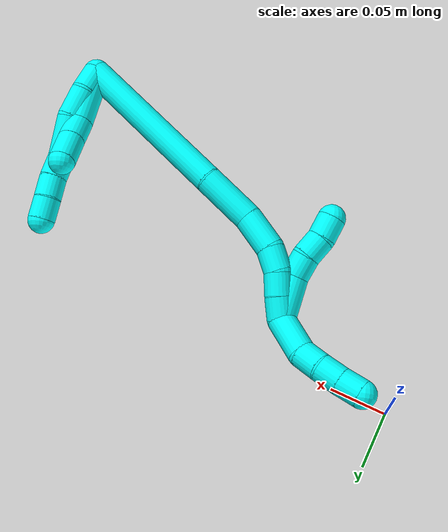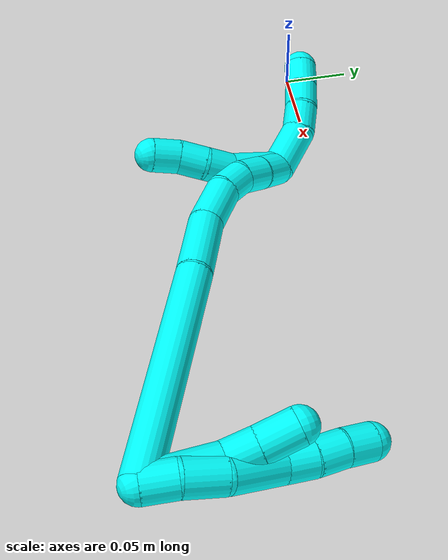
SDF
<sdf version="1.7">
 <world name="default">
  <model name="3">
   <static>0</static>
   <link name="3">
    <collision name="collision-cylinder-e_1_2_8">
     <pose>0.002147 0.003756 -0.010749 -2.80545 0.186398 -1.00704</pose>
     <geometry><cylinder><radius>0.0125</radius><length>0.023175</length></cylinder></geometry>
     <surface>
      <friction><ode><mu>1.16</mu><mu2>1.16</mu2><slip1>0</slip1><slip2>0</slip2></ode></friction>
      <contact><ode><kp>1e+06</kp><kd>1</kd><max_vel>0</max_vel><min_depth>0.001</min_depth></ode></contact>
     </surface>
    </collision>
    <visual name="visual-cylinder-e_1_2_8">
     <pose>0.002147 0.003756 -0.010749 -2.80545 0.186398 -1.00704</pose>
     <geometry><cylinder><radius>0.0125</radius><length>0.023175</length></cylinder></geometry>
     <material><ambient>0.003922 1 0.996078 1</ambient></material>
    </visual>
    <collision name="collision-cylinder-e_2_8_9">
     <pose>0.008215 0.00917 -0.034516 -3.0149 0.290323 -2.32284</pose>
     <geometry><cylinder><radius>0.0125</radius><length>0.027392</length></cylinder></geometry>
     <surface>
      <friction><ode><mu>1.16</mu><mu2>1.16</mu2><slip1>0</slip1><slip2>0</slip2></ode></friction>
      <contact><ode><kp>1e+06</kp><kd>1</kd><max_vel>0</max_vel><min_depth>0.001</min_depth></ode></contact>
     </surface>
    </collision>
    <visual name="visual-cylinder-e_2_8_9">
     <pose>0.008215 0.00917 -0.034516 -3.0149 0.290323 -2.32284</pose>
     <geometry><cylinder><radius>0.0125</radius><length>0.027392</length></cylinder></geometry>
     <material><ambient>0.003922 1 0.996078 1</ambient></material>
    </visual>
    <collision name="collision-cylinder-e_3_9_10">
     <pose>0.01556 0.008536 -0.066186 3.01934 0.180249 1.951</pose>
     <geometry><cylinder><radius>0.0125</radius><length>0.038203</length></cylinder></geometry>
     <surface>
      <friction><ode><mu>1.16</mu><mu2>1.16</mu2><slip1>0</slip1><slip2>0</slip2></ode></friction>
      <contact><ode><kp>1e+06</kp><kd>1</kd><max_vel>0</max_vel><min_depth>0.001</min_depth></ode></contact>
     </surface>
    </collision>
    <visual name="visual-cylinder-e_3_9_10">
     <pose>0.01556 0.008536 -0.066186 3.01934 0.180249 1.951</pose>
     <geometry><cylinder><radius>0.0125</radius><length>0.038203</length></cylinder></geometry>
     <material><ambient>0.003922 1 0.996078 1</ambient></material>
    </visual>
    <collision name="collision-cylinder-e_4_10_11">
     <pose>0.020654 0.007652 -0.094924 -3.00297 0.162483 -1.72956</pose>
     <geometry><cylinder><radius>0.0125</radius><length>0.020639</length></cylinder></geometry>
     <surface>
      <friction><ode><mu>1.16</mu><mu2>1.16</mu2><slip1>0</slip1><slip2>0</slip2></ode></friction>
      <contact><ode><kp>1e+06</kp><kd>1</kd><max_vel>0</max_vel><min_depth>0.001</min_depth></ode></contact>
     </surface>
    </collision>
    <visual name="visual-cylinder-e_4_10_11">
     <pose>0.020654 0.007652 -0.094924 -3.00297 0.162483 -1.72956</pose>
     <geometry><cylinder><radius>0.0125</radius><length>0.020639</length></cylinder></geometry>
     <material><ambient>0.003922 1 0.996078 1</ambient></material>
    </visual>
    <collision name="collision-cylinder-e_5_11_12">
     <pose>0.022953 0.009693 -0.115167 -3.07921 0.061729 -1.56022</pose>
     <geometry><cylinder><radius>0.0125</radius><length>0.020394</length></cylinder></geometry>
     <surface>
      <friction><ode><mu>1.16</mu><mu2>1.16</mu2><slip1>0</slip1><slip2>0</slip2></ode></friction>
      <contact><ode><kp>1e+06</kp><kd>1</kd><max_vel>0</max_vel><min_depth>0.001</min_depth></ode></contact>
     </surface>
    </collision>
    <visual name="visual-cylinder-e_5_11_12">
     <pose>0.022953 0.009693 -0.115167 -3.07921 0.061729 -1.56022</pose>
     <geometry><cylinder><radius>0.0125</radius><length>0.020394</length></cylinder></geometry>
     <material><ambient>0.003922 1 0.996078 1</ambient></material>
    </visual>
    <collision name="collision-cylinder-e_6_12_6">
     <pose>0.025015 0.010296 -0.135321 3.13842 0.142376 3.09718</pose>
     <geometry><cylinder><radius>0.0125</radius><length>0.020197</length></cylinder></geometry>
     <surface>
      <friction><ode><mu>1.16</mu><mu2>1.16</mu2><slip1>0</slip1><slip2>0</slip2></ode></friction>
      <contact><ode><kp>1e+06</kp><kd>1</kd><max_vel>0</max_vel><min_depth>0.001</min_depth></ode></contact>
     </surface>
    </collision>
    <visual name="visual-cylinder-e_6_12_6">
     <pose>0.025015 0.010296 -0.135321 3.13842 0.142376 3.09718</pose>
     <geometry><cylinder><radius>0.0125</radius><length>0.020197</length></cylinder></geometry>
     <material><ambient>0.003922 1 0.996078 1</ambient></material>
    </visual>
    <collision name="collision-cylinder-e_1_2_13">
     <pose>0.002592 0.002995 -0.025529 -3.0248 0.100503 -1.42082</pose>
     <geometry><cylinder><radius>0.0125</radius><length>0.05167</length></cylinder></geometry>
     <surface>
      <friction><ode><mu>1.16</mu><mu2>1.16</mu2><slip1>0</slip1><slip2>0</slip2></ode></friction>
      <contact><ode><kp>1e+06</kp><kd>1</kd><max_vel>0</max_vel><min_depth>0.001</min_depth></ode></contact>
     </surface>
    </collision>
    <visual name="visual-cylinder-e_1_2_13">
     <pose>0.002592 0.002995 -0.025529 -3.0248 0.100503 -1.42082</pose>
     <geometry><cylinder><radius>0.0125</radius><length>0.05167</length></cylinder></geometry>
     <material><ambient>0.003922 1 0.996078 1</ambient></material>
    </visual>
    <collision name="collision-cylinder-e_2_13_14">
     <pose>0.00433 0.010303 -0.061237 -2.74083 -0.077164 0.375621</pose>
     <geometry><cylinder><radius>0.0125</radius><length>0.022174</length></cylinder></geometry>
     <surface>
      <friction><ode><mu>1.16</mu><mu2>1.16</mu2><slip1>0</slip1><slip2>0</slip2></ode></friction>
      <contact><ode><kp>1e+06</kp><kd>1</kd><max_vel>0</max_vel><min_depth>0.001</min_depth></ode></contact>
     </surface>
    </collision>
    <visual name="visual-cylinder-e_2_13_14">
     <pose>0.00433 0.010303 -0.061237 -2.74083 -0.077164 0.375621</pose>
     <geometry><cylinder><radius>0.0125</radius><length>0.022174</length></cylinder></geometry>
     <material><ambient>0.003922 1 0.996078 1</ambient></material>
    </visual>
    <collision name="collision-cylinder-e_3_14_5">
     <pose>0.002008 0.019761 -0.083349 -2.7345 -0.112404 0.53223</pose>
     <geometry><cylinder><radius>0.0125</radius><length>0.026156</length></cylinder></geometry>
     <surface>
      <friction><ode><mu>1.16</mu><mu2>1.16</mu2><slip1>0</slip1><slip2>0</slip2></ode></friction>
      <contact><ode><kp>1e+06</kp><kd>1</kd><max_vel>0</max_vel><min_depth>0.001</min_depth></ode></contact>
     </surface>
    </collision>
    <visual name="visual-cylinder-e_3_14_5">
     <pose>0.002008 0.019761 -0.083349 -2.7345 -0.112404 0.53223</pose>
     <geometry><cylinder><radius>0.0125</radius><length>0.026156</length></cylinder></geometry>
     <material><ambient>0.003922 1 0.996078 1</ambient></material>
    </visual>
    <collision name="collision-cylinder-e_1_2_15">
     <pose>-0.055385 -0.0227 -0.047302 2.69416 -0.812451 -2.16853</pose>
     <geometry><cylinder><radius>0.0125</radius><length>0.152582</length></cylinder></geometry>
     <surface>
      <friction><ode><mu>1.16</mu><mu2>1.16</mu2><slip1>0</slip1><slip2>0</slip2></ode></friction>
      <contact><ode><kp>1e+06</kp><kd>1</kd><max_vel>0</max_vel><min_depth>0.001</min_depth></ode></contact>
     </surface>
    </collision>
    <visual name="visual-cylinder-e_1_2_15">
     <pose>-0.055385 -0.0227 -0.047302 2.69416 -0.812451 -2.16853</pose>
     <geometry><cylinder><radius>0.0125</radius><length>0.152582</length></cylinder></geometry>
     <material><ambient>0.003922 1 0.996078 1</ambient></material>
    </visual>
    <collision name="collision-cylinder-e_2_15_16">
     <pose>-0.127583 -0.055956 -0.10964 2.5295 -0.741093 -1.77595</pose>
     <geometry><cylinder><radius>0.0125</radius><length>0.049807</length></cylinder></geometry>
     <surface>
      <friction><ode><mu>1.16</mu><mu2>1.16</mu2><slip1>0</slip1><slip2>0</slip2></ode></friction>
      <contact><ode><kp>1e+06</kp><kd>1</kd><max_vel>0</max_vel><min_depth>0.001</min_depth></ode></contact>
     </surface>
    </collision>
    <visual name="visual-cylinder-e_2_15_16">
     <pose>-0.127583 -0.055956 -0.10964 2.5295 -0.741093 -1.77595</pose>
     <geometry><cylinder><radius>0.0125</radius><length>0.049807</length></cylinder></geometry>
     <material><ambient>0.003922 1 0.996078 1</ambient></material>
    </visual>
    <collision name="collision-cylinder-e_3_16_17">
     <pose>-0.154924 -0.071112 -0.137572 2.79896 -0.655586 -2.20033</pose>
     <geometry><cylinder><radius>0.0125</radius><length>0.034543</length></cylinder></geometry>
     <surface>
      <friction><ode><mu>1.16</mu><mu2>1.16</mu2><slip1>0</slip1><slip2>0</slip2></ode></friction>
      <contact><ode><kp>1e+06</kp><kd>1</kd><max_vel>0</max_vel><min_depth>0.001</min_depth></ode></contact>
     </surface>
    </collision>
    <visual name="visual-cylinder-e_3_16_17">
     <pose>-0.154924 -0.071112 -0.137572 2.79896 -0.655586 -2.20033</pose>
     <geometry><cylinder><radius>0.0125</radius><length>0.034543</length></cylinder></geometry>
     <material><ambient>0.003922 1 0.996078 1</ambient></material>
    </visual>
    <collision name="collision-cylinder-e_4_17_18">
     <pose>-0.169217 -0.078402 -0.160333 2.87539 -0.352706 -1.85287</pose>
     <geometry><cylinder><radius>0.0125</radius><length>0.021793</length></cylinder></geometry>
     <surface>
      <friction><ode><mu>1.16</mu><mu2>1.16</mu2><slip1>0</slip1><slip2>0</slip2></ode></friction>
      <contact><ode><kp>1e+06</kp><kd>1</kd><max_vel>0</max_vel><min_depth>0.001</min_depth></ode></contact>
     </surface>
    </collision>
    <visual name="visual-cylinder-e_4_17_18">
     <pose>-0.169217 -0.078402 -0.160333 2.87539 -0.352706 -1.85287</pose>
     <geometry><cylinder><radius>0.0125</radius><length>0.021793</length></cylinder></geometry>
     <material><ambient>0.003922 1 0.996078 1</ambient></material>
    </visual>
    <collision name="collision-cylinder-e_5_18_19">
     <pose>-0.173347 -0.083661 -0.180201 2.89022 -0.035386 -0.278276</pose>
     <geometry><cylinder><radius>0.0125</radius><length>0.020666</length></cylinder></geometry>
     <surface>
      <friction><ode><mu>1.16</mu><mu2>1.16</mu2><slip1>0</slip1><slip2>0</slip2></ode></friction>
      <contact><ode><kp>1e+06</kp><kd>1</kd><max_vel>0</max_vel><min_depth>0.001</min_depth></ode></contact>
     </surface>
    </collision>
    <visual name="visual-cylinder-e_5_18_19">
     <pose>-0.173347 -0.083661 -0.180201 2.89022 -0.035386 -0.278276</pose>
     <geometry><cylinder><radius>0.0125</radius><length>0.020666</length></cylinder></geometry>
     <material><ambient>0.003922 1 0.996078 1</ambient></material>
    </visual>
    <collision name="collision-cylinder-e_6_19_1">
     <pose>-0.174552 -0.089419 -0.199965 2.82573 -0.081538 -0.501493</pose>
     <geometry><cylinder><radius>0.0125</radius><length>0.020609</length></cylinder></geometry>
     <surface>
      <friction><ode><mu>1.16</mu><mu2>1.16</mu2><slip1>0</slip1><slip2>0</slip2></ode></friction>
      <contact><ode><kp>1e+06</kp><kd>1</kd><max_vel>0</max_vel><min_depth>0.001</min_depth></ode></contact>
     </surface>
    </collision>
    <visual name="visual-cylinder-e_6_19_1">
     <pose>-0.174552 -0.089419 -0.199965 2.82573 -0.081538 -0.501493</pose>
     <geometry><cylinder><radius>0.0125</radius><length>0.020609</length></cylinder></geometry>
     <material><ambient>0.003922 1 0.996078 1</ambient></material>
    </visual>
    <collision name="collision-cylinder-e_1_1_20">
     <pose>-0.187375 -0.092568 -0.223941 -3.13862 -0.700492 3.13346</pose>
     <geometry><cylinder><radius>0.0125</radius><length>0.037184</length></cylinder></geometry>
     <surface>
      <friction><ode><mu>1.16</mu><mu2>1.16</mu2><slip1>0</slip1><slip2>0</slip2></ode></friction>
      <contact><ode><kp>1e+06</kp><kd>1</kd><max_vel>0</max_vel><min_depth>0.001</min_depth></ode></contact>
     </surface>
    </collision>
    <visual name="visual-cylinder-e_1_1_20">
     <pose>-0.187375 -0.092568 -0.223941 -3.13862 -0.700492 3.13346</pose>
     <geometry><cylinder><radius>0.0125</radius><length>0.037184</length></cylinder></geometry>
     <material><ambient>0.003922 1 0.996078 1</ambient></material>
    </visual>
    <collision name="collision-cylinder-e_2_20_21">
     <pose>-0.208506 -0.093243 -0.243508 3.00834 -1.03738 -2.90886</pose>
     <geometry><cylinder><radius>0.0125</radius><length>0.021243</length></cylinder></geometry>
     <surface>
      <friction><ode><mu>1.16</mu><mu2>1.16</mu2><slip1>0</slip1><slip2>0</slip2></ode></friction>
      <contact><ode><kp>1e+06</kp><kd>1</kd><max_vel>0</max_vel><min_depth>0.001</min_depth></ode></contact>
     </surface>
    </collision>
    <visual name="visual-cylinder-e_2_20_21">
     <pose>-0.208506 -0.093243 -0.243508 3.00834 -1.03738 -2.90886</pose>
     <geometry><cylinder><radius>0.0125</radius><length>0.021243</length></cylinder></geometry>
     <material><ambient>0.003922 1 0.996078 1</ambient></material>
    </visual>
    <collision name="collision-cylinder-e_3_21_22">
     <pose>-0.226478 -0.09645 -0.253814 2.67575 -1.00999 -2.33085</pose>
     <geometry><cylinder><radius>0.0125</radius><length>0.020845</length></cylinder></geometry>
     <surface>
      <friction><ode><mu>1.16</mu><mu2>1.16</mu2><slip1>0</slip1><slip2>0</slip2></ode></friction>
      <contact><ode><kp>1e+06</kp><kd>1</kd><max_vel>0</max_vel><min_depth>0.001</min_depth></ode></contact>
     </surface>
    </collision>
    <visual name="visual-cylinder-e_3_21_22">
     <pose>-0.226478 -0.09645 -0.253814 2.67575 -1.00999 -2.33085</pose>
     <geometry><cylinder><radius>0.0125</radius><length>0.020845</length></cylinder></geometry>
     <material><ambient>0.003922 1 0.996078 1</ambient></material>
    </visual>
    <collision name="collision-cylinder-e_4_22_4">
     <pose>-0.244426 -0.101137 -0.263167 2.67867 -1.07635 -2.38954</pose>
     <geometry><cylinder><radius>0.0125</radius><length>0.020727</length></cylinder></geometry>
     <surface>
      <friction><ode><mu>1.16</mu><mu2>1.16</mu2><slip1>0</slip1><slip2>0</slip2></ode></friction>
      <contact><ode><kp>1e+06</kp><kd>1</kd><max_vel>0</max_vel><min_depth>0.001</min_depth></ode></contact>
     </surface>
    </collision>
    <visual name="visual-cylinder-e_4_22_4">
     <pose>-0.244426 -0.101137 -0.263167 2.67867 -1.07635 -2.38954</pose>
     <geometry><cylinder><radius>0.0125</radius><length>0.020727</length></cylinder></geometry>
     <material><ambient>0.003922 1 0.996078 1</ambient></material>
    </visual>
    <collision name="collision-cylinder-e_1_1_23">
     <pose>-0.179061 -0.092954 -0.190414 0.017811 -0.187755 -0.001677</pose>
     <geometry><cylinder><radius>0.0125</radius><length>0.039324</length></cylinder></geometry>
     <surface>
      <friction><ode><mu>1.16</mu><mu2>1.16</mu2><slip1>0</slip1><slip2>0</slip2></ode></friction>
      <contact><ode><kp>1e+06</kp><kd>1</kd><max_vel>0</max_vel><min_depth>0.001</min_depth></ode></contact>
     </surface>
    </collision>
    <visual name="visual-cylinder-e_1_1_23">
     <pose>-0.179061 -0.092954 -0.190414 0.017811 -0.187755 -0.001677</pose>
     <geometry><cylinder><radius>0.0125</radius><length>0.039324</length></cylinder></geometry>
     <material><ambient>0.003922 1 0.996078 1</ambient></material>
    </visual>
    <collision name="collision-cylinder-e_2_23_24">
     <pose>-0.187295 -0.093161 -0.161953 -0.014995 -0.462727 0.003533</pose>
     <geometry><cylinder><radius>0.0125</radius><length>0.020446</length></cylinder></geometry>
     <surface>
      <friction><ode><mu>1.16</mu><mu2>1.16</mu2><slip1>0</slip1><slip2>0</slip2></ode></friction>
      <contact><ode><kp>1e+06</kp><kd>1</kd><max_vel>0</max_vel><min_depth>0.001</min_depth></ode></contact>
     </surface>
    </collision>
    <visual name="visual-cylinder-e_2_23_24">
     <pose>-0.187295 -0.093161 -0.161953 -0.014995 -0.462727 0.003533</pose>
     <geometry><cylinder><radius>0.0125</radius><length>0.020446</length></cylinder></geometry>
     <material><ambient>0.003922 1 0.996078 1</ambient></material>
    </visual>
    <collision name="collision-cylinder-e_3_24_25">
     <pose>-0.197107 -0.094965 -0.144498 0.229566 -0.551491 -0.06522</pose>
     <geometry><cylinder><radius>0.0125</radius><length>0.020035</length></cylinder></geometry>
     <surface>
      <friction><ode><mu>1.16</mu><mu2>1.16</mu2><slip1>0</slip1><slip2>0</slip2></ode></friction>
      <contact><ode><kp>1e+06</kp><kd>1</kd><max_vel>0</max_vel><min_depth>0.001</min_depth></ode></contact>
     </surface>
    </collision>
    <visual name="visual-cylinder-e_3_24_25">
     <pose>-0.197107 -0.094965 -0.144498 0.229566 -0.551491 -0.06522</pose>
     <geometry><cylinder><radius>0.0125</radius><length>0.020035</length></cylinder></geometry>
     <material><ambient>0.003922 1 0.996078 1</ambient></material>
    </visual>
    <collision name="collision-cylinder-e_4_25_3">
     <pose>-0.205634 -0.098265 -0.126736 0.142688 -0.330676 -0.023849</pose>
     <geometry><cylinder><radius>0.0125</radius><length>0.020194</length></cylinder></geometry>
     <surface>
      <friction><ode><mu>1.16</mu><mu2>1.16</mu2><slip1>0</slip1><slip2>0</slip2></ode></friction>
      <contact><ode><kp>1e+06</kp><kd>1</kd><max_vel>0</max_vel><min_depth>0.001</min_depth></ode></contact>
     </surface>
    </collision>
    <visual name="visual-cylinder-e_4_25_3">
     <pose>-0.205634 -0.098265 -0.126736 0.142688 -0.330676 -0.023849</pose>
     <geometry><cylinder><radius>0.0125</radius><length>0.020194</length></cylinder></geometry>
     <material><ambient>0.003922 1 0.996078 1</ambient></material>
    </visual>
    <collision name="collision-sphere-3">
     <pose>-0.208912 -0.099623 -0.117283 0 -0 0</pose>
     <geometry><sphere><radius>0.0125</radius></sphere></geometry>
     <surface>
      <friction><ode><mu>1.16</mu><mu2>1.16</mu2><slip1>0</slip1><slip2>0</slip2></ode></friction>
      <contact><ode><kp>1e+06</kp><kd>1</kd><max_vel>0</max_vel><min_depth>0.001</min_depth></ode></contact>
     </surface>
    </collision>
    <visual name="visual-sphere-3">
     <pose>-0.208912 -0.099623 -0.117283 0 -0 0</pose>
     <geometry><sphere><radius>0.0125</radius></sphere></geometry>
     <material><ambient>0.003922 1 0.996078 1</ambient></material>
    </visual>
    <collision name="collision-sphere-25">
     <pose>-0.202356 -0.096907 -0.136189 0 -0 0</pose>
     <geometry><sphere><radius>0.0125</radius></sphere></geometry>
     <surface>
      <friction><ode><mu>1.16</mu><mu2>1.16</mu2><slip1>0</slip1><slip2>0</slip2></ode></friction>
      <contact><ode><kp>1e+06</kp><kd>1</kd><max_vel>0</max_vel><min_depth>0.001</min_depth></ode></contact>
     </surface>
    </collision>
    <visual name="visual-sphere-25">
     <pose>-0.202356 -0.096907 -0.136189 0 -0 0</pose>
     <geometry><sphere><radius>0.0125</radius></sphere></geometry>
     <material><ambient>0.003922 1 0.996078 1</ambient></material>
    </visual>
    <collision name="collision-sphere-24">
     <pose>-0.191858 -0.093023 -0.152806 0 -0 0</pose>
     <geometry><sphere><radius>0.0125</radius></sphere></geometry>
     <surface>
      <friction><ode><mu>1.16</mu><mu2>1.16</mu2><slip1>0</slip1><slip2>0</slip2></ode></friction>
      <contact><ode><kp>1e+06</kp><kd>1</kd><max_vel>0</max_vel><min_depth>0.001</min_depth></ode></contact>
     </surface>
    </collision>
    <visual name="visual-sphere-24">
     <pose>-0.191858 -0.093023 -0.152806 0 -0 0</pose>
     <geometry><sphere><radius>0.0125</radius></sphere></geometry>
     <material><ambient>0.003922 1 0.996078 1</ambient></material>
    </visual>
    <collision name="collision-sphere-23">
     <pose>-0.182731 -0.093298 -0.1711 0 -0 0</pose>
     <geometry><sphere><radius>0.0125</radius></sphere></geometry>
     <surface>
      <friction><ode><mu>1.16</mu><mu2>1.16</mu2><slip1>0</slip1><slip2>0</slip2></ode></friction>
      <contact><ode><kp>1e+06</kp><kd>1</kd><max_vel>0</max_vel><min_depth>0.001</min_depth></ode></contact>
     </surface>
    </collision>
    <visual name="visual-sphere-23">
     <pose>-0.182731 -0.093298 -0.1711 0 -0 0</pose>
     <geometry><sphere><radius>0.0125</radius></sphere></geometry>
     <material><ambient>0.003922 1 0.996078 1</ambient></material>
    </visual>
    <collision name="collision-sphere-4">
     <pose>-0.253549 -0.103333 -0.267568 0 -0 0</pose>
     <geometry><sphere><radius>0.0125</radius></sphere></geometry>
     <surface>
      <friction><ode><mu>1.16</mu><mu2>1.16</mu2><slip1>0</slip1><slip2>0</slip2></ode></friction>
      <contact><ode><kp>1e+06</kp><kd>1</kd><max_vel>0</max_vel><min_depth>0.001</min_depth></ode></contact>
     </surface>
    </collision>
    <visual name="visual-sphere-4">
     <pose>-0.253549 -0.103333 -0.267568 0 -0 0</pose>
     <geometry><sphere><radius>0.0125</radius></sphere></geometry>
     <material><ambient>0.003922 1 0.996078 1</ambient></material>
    </visual>
    <collision name="collision-sphere-22">
     <pose>-0.235304 -0.09894 -0.258767 0 -0 0</pose>
     <geometry><sphere><radius>0.0125</radius></sphere></geometry>
     <surface>
      <friction><ode><mu>1.16</mu><mu2>1.16</mu2><slip1>0</slip1><slip2>0</slip2></ode></friction>
      <contact><ode><kp>1e+06</kp><kd>1</kd><max_vel>0</max_vel><min_depth>0.001</min_depth></ode></contact>
     </surface>
    </collision>
    <visual name="visual-sphere-22">
     <pose>-0.235304 -0.09894 -0.258767 0 -0 0</pose>
     <geometry><sphere><radius>0.0125</radius></sphere></geometry>
     <material><ambient>0.003922 1 0.996078 1</ambient></material>
    </visual>
    <collision name="collision-sphere-21">
     <pose>-0.217652 -0.09396 -0.248861 0 -0 0</pose>
     <geometry><sphere><radius>0.0125</radius></sphere></geometry>
     <surface>
      <friction><ode><mu>1.16</mu><mu2>1.16</mu2><slip1>0</slip1><slip2>0</slip2></ode></friction>
      <contact><ode><kp>1e+06</kp><kd>1</kd><max_vel>0</max_vel><min_depth>0.001</min_depth></ode></contact>
     </surface>
    </collision>
    <visual name="visual-sphere-21">
     <pose>-0.217652 -0.09396 -0.248861 0 -0 0</pose>
     <geometry><sphere><radius>0.0125</radius></sphere></geometry>
     <material><ambient>0.003922 1 0.996078 1</ambient></material>
    </visual>
    <collision name="collision-sphere-20">
     <pose>-0.19936 -0.092525 -0.238155 0 -0 0</pose>
     <geometry><sphere><radius>0.0125</radius></sphere></geometry>
     <surface>
      <friction><ode><mu>1.16</mu><mu2>1.16</mu2><slip1>0</slip1><slip2>0</slip2></ode></friction>
      <contact><ode><kp>1e+06</kp><kd>1</kd><max_vel>0</max_vel><min_depth>0.001</min_depth></ode></contact>
     </surface>
    </collision>
    <visual name="visual-sphere-20">
     <pose>-0.19936 -0.092525 -0.238155 0 -0 0</pose>
     <geometry><sphere><radius>0.0125</radius></sphere></geometry>
     <material><ambient>0.003922 1 0.996078 1</ambient></material>
    </visual>
    <collision name="collision-sphere-12">
     <pose>0.023582 0.010328 -0.125325 0 -0 0</pose>
     <geometry><sphere><radius>0.0125</radius></sphere></geometry>
     <surface>
      <friction><ode><mu>1.16</mu><mu2>1.16</mu2><slip1>0</slip1><slip2>0</slip2></ode></friction>
      <contact><ode><kp>1e+06</kp><kd>1</kd><max_vel>0</max_vel><min_depth>0.001</min_depth></ode></contact>
     </surface>
    </collision>
    <visual name="visual-sphere-12">
     <pose>0.023582 0.010328 -0.125325 0 -0 0</pose>
     <geometry><sphere><radius>0.0125</radius></sphere></geometry>
     <material><ambient>0.003922 1 0.996078 1</ambient></material>
    </visual>
    <collision name="collision-sphere-11">
     <pose>0.022324 0.009059 -0.10501 0 -0 0</pose>
     <geometry><sphere><radius>0.0125</radius></sphere></geometry>
     <surface>
      <friction><ode><mu>1.16</mu><mu2>1.16</mu2><slip1>0</slip1><slip2>0</slip2></ode></friction>
      <contact><ode><kp>1e+06</kp><kd>1</kd><max_vel>0</max_vel><min_depth>0.001</min_depth></ode></contact>
     </surface>
    </collision>
    <visual name="visual-sphere-11">
     <pose>0.022324 0.009059 -0.10501 0 -0 0</pose>
     <geometry><sphere><radius>0.0125</radius></sphere></geometry>
     <material><ambient>0.003922 1 0.996078 1</ambient></material>
    </visual>
    <collision name="collision-sphere-10">
     <pose>0.018985 0.006245 -0.084838 0 -0 0</pose>
     <geometry><sphere><radius>0.0125</radius></sphere></geometry>
     <surface>
      <friction><ode><mu>1.16</mu><mu2>1.16</mu2><slip1>0</slip1><slip2>0</slip2></ode></friction>
      <contact><ode><kp>1e+06</kp><kd>1</kd><max_vel>0</max_vel><min_depth>0.001</min_depth></ode></contact>
     </surface>
    </collision>
    <visual name="visual-sphere-10">
     <pose>0.018985 0.006245 -0.084838 0 -0 0</pose>
     <geometry><sphere><radius>0.0125</radius></sphere></geometry>
     <material><ambient>0.003922 1 0.996078 1</ambient></material>
    </visual>
    <collision name="collision-sphere-9">
     <pose>0.012136 0.010828 -0.047534 0 -0 0</pose>
     <geometry><sphere><radius>0.0125</radius></sphere></geometry>
     <surface>
      <friction><ode><mu>1.16</mu><mu2>1.16</mu2><slip1>0</slip1><slip2>0</slip2></ode></friction>
      <contact><ode><kp>1e+06</kp><kd>1</kd><max_vel>0</max_vel><min_depth>0.001</min_depth></ode></contact>
     </surface>
    </collision>
    <visual name="visual-sphere-9">
     <pose>0.012136 0.010828 -0.047534 0 -0 0</pose>
     <geometry><sphere><radius>0.0125</radius></sphere></geometry>
     <material><ambient>0.003922 1 0.996078 1</ambient></material>
    </visual>
    <collision name="collision-sphere-2">
     <geometry><sphere><radius>0.0125</radius></sphere></geometry>
     <surface>
      <friction><ode><mu>1.16</mu><mu2>1.16</mu2><slip1>0</slip1><slip2>0</slip2></ode></friction>
      <contact><ode><kp>1e+06</kp><kd>1</kd><max_vel>0</max_vel><min_depth>0.001</min_depth></ode></contact>
     </surface>
    </collision>
    <visual name="visual-sphere-2">
     <geometry><sphere><radius>0.0125</radius></sphere></geometry>
     <material><ambient>0.003922 1 0.996078 1</ambient></material>
    </visual>
    <collision name="collision-sphere-19">
     <pose>-0.173712 -0.086229 -0.190203 0 -0 0</pose>
     <geometry><sphere><radius>0.0125</radius></sphere></geometry>
     <surface>
      <friction><ode><mu>1.16</mu><mu2>1.16</mu2><slip1>0</slip1><slip2>0</slip2></ode></friction>
      <contact><ode><kp>1e+06</kp><kd>1</kd><max_vel>0</max_vel><min_depth>0.001</min_depth></ode></contact>
     </surface>
    </collision>
    <visual name="visual-sphere-19">
     <pose>-0.173712 -0.086229 -0.190203 0 -0 0</pose>
     <geometry><sphere><radius>0.0125</radius></sphere></geometry>
     <material><ambient>0.003922 1 0.996078 1</ambient></material>
    </visual>
    <collision name="collision-sphere-8">
     <pose>0.004295 0.007512 -0.021499 0 -0 0</pose>
     <geometry><sphere><radius>0.0125</radius></sphere></geometry>
     <surface>
      <friction><ode><mu>1.16</mu><mu2>1.16</mu2><slip1>0</slip1><slip2>0</slip2></ode></friction>
      <contact><ode><kp>1e+06</kp><kd>1</kd><max_vel>0</max_vel><min_depth>0.001</min_depth></ode></contact>
     </surface>
    </collision>
    <visual name="visual-sphere-8">
     <pose>0.004295 0.007512 -0.021499 0 -0 0</pose>
     <geometry><sphere><radius>0.0125</radius></sphere></geometry>
     <material><ambient>0.003922 1 0.996078 1</ambient></material>
    </visual>
    <collision name="collision-sphere-6">
     <pose>0.026448 0.010264 -0.145318 0 -0 0</pose>
     <geometry><sphere><radius>0.0125</radius></sphere></geometry>
     <surface>
      <friction><ode><mu>1.16</mu><mu2>1.16</mu2><slip1>0</slip1><slip2>0</slip2></ode></friction>
      <contact><ode><kp>1e+06</kp><kd>1</kd><max_vel>0</max_vel><min_depth>0.001</min_depth></ode></contact>
     </surface>
    </collision>
    <visual name="visual-sphere-6">
     <pose>0.026448 0.010264 -0.145318 0 -0 0</pose>
     <geometry><sphere><radius>0.0125</radius></sphere></geometry>
     <material><ambient>0.003922 1 0.996078 1</ambient></material>
    </visual>
    <collision name="collision-sphere-13">
     <pose>0.005184 0.005991 -0.051059 0 -0 0</pose>
     <geometry><sphere><radius>0.0125</radius></sphere></geometry>
     <surface>
      <friction><ode><mu>1.16</mu><mu2>1.16</mu2><slip1>0</slip1><slip2>0</slip2></ode></friction>
      <contact><ode><kp>1e+06</kp><kd>1</kd><max_vel>0</max_vel><min_depth>0.001</min_depth></ode></contact>
     </surface>
    </collision>
    <visual name="visual-sphere-13">
     <pose>0.005184 0.005991 -0.051059 0 -0 0</pose>
     <geometry><sphere><radius>0.0125</radius></sphere></geometry>
     <material><ambient>0.003922 1 0.996078 1</ambient></material>
    </visual>
    <collision name="collision-sphere-14">
     <pose>0.003475 0.014616 -0.071415 0 -0 0</pose>
     <geometry><sphere><radius>0.0125</radius></sphere></geometry>
     <surface>
      <friction><ode><mu>1.16</mu><mu2>1.16</mu2><slip1>0</slip1><slip2>0</slip2></ode></friction>
      <contact><ode><kp>1e+06</kp><kd>1</kd><max_vel>0</max_vel><min_depth>0.001</min_depth></ode></contact>
     </surface>
    </collision>
    <visual name="visual-sphere-14">
     <pose>0.003475 0.014616 -0.071415 0 -0 0</pose>
     <geometry><sphere><radius>0.0125</radius></sphere></geometry>
     <material><ambient>0.003922 1 0.996078 1</ambient></material>
    </visual>
    <collision name="collision-sphere-5">
     <pose>0.000541 0.024906 -0.095282 0 -0 0</pose>
     <geometry><sphere><radius>0.0125</radius></sphere></geometry>
     <surface>
      <friction><ode><mu>1.16</mu><mu2>1.16</mu2><slip1>0</slip1><slip2>0</slip2></ode></friction>
      <contact><ode><kp>1e+06</kp><kd>1</kd><max_vel>0</max_vel><min_depth>0.001</min_depth></ode></contact>
     </surface>
    </collision>
    <visual name="visual-sphere-5">
     <pose>0.000541 0.024906 -0.095282 0 -0 0</pose>
     <geometry><sphere><radius>0.0125</radius></sphere></geometry>
     <material><ambient>0.003922 1 0.996078 1</ambient></material>
    </visual>
    <collision name="collision-sphere-15">
     <pose>-0.11077 -0.0454 -0.094604 0 -0 0</pose>
     <geometry><sphere><radius>0.0125</radius></sphere></geometry>
     <surface>
      <friction><ode><mu>1.16</mu><mu2>1.16</mu2><slip1>0</slip1><slip2>0</slip2></ode></friction>
      <contact><ode><kp>1e+06</kp><kd>1</kd><max_vel>0</max_vel><min_depth>0.001</min_depth></ode></contact>
     </surface>
    </collision>
    <visual name="visual-sphere-15">
     <pose>-0.11077 -0.0454 -0.094604 0 -0 0</pose>
     <geometry><sphere><radius>0.0125</radius></sphere></geometry>
     <material><ambient>0.003922 1 0.996078 1</ambient></material>
    </visual>
    <collision name="collision-sphere-16">
     <pose>-0.144395 -0.066512 -0.124677 0 -0 0</pose>
     <geometry><sphere><radius>0.0125</radius></sphere></geometry>
     <surface>
      <friction><ode><mu>1.16</mu><mu2>1.16</mu2><slip1>0</slip1><slip2>0</slip2></ode></friction>
      <contact><ode><kp>1e+06</kp><kd>1</kd><max_vel>0</max_vel><min_depth>0.001</min_depth></ode></contact>
     </surface>
    </collision>
    <visual name="visual-sphere-16">
     <pose>-0.144395 -0.066512 -0.124677 0 -0 0</pose>
     <geometry><sphere><radius>0.0125</radius></sphere></geometry>
     <material><ambient>0.003922 1 0.996078 1</ambient></material>
    </visual>
    <collision name="collision-sphere-17">
     <pose>-0.165453 -0.075712 -0.150467 0 -0 0</pose>
     <geometry><sphere><radius>0.0125</radius></sphere></geometry>
     <surface>
      <friction><ode><mu>1.16</mu><mu2>1.16</mu2><slip1>0</slip1><slip2>0</slip2></ode></friction>
      <contact><ode><kp>1e+06</kp><kd>1</kd><max_vel>0</max_vel><min_depth>0.001</min_depth></ode></contact>
     </surface>
    </collision>
    <visual name="visual-sphere-17">
     <pose>-0.165453 -0.075712 -0.150467 0 -0 0</pose>
     <geometry><sphere><radius>0.0125</radius></sphere></geometry>
     <material><ambient>0.003922 1 0.996078 1</ambient></material>
    </visual>
    <collision name="collision-sphere-18">
     <pose>-0.172981 -0.081092 -0.170199 0 -0 0</pose>
     <geometry><sphere><radius>0.0125</radius></sphere></geometry>
     <surface>
      <friction><ode><mu>1.16</mu><mu2>1.16</mu2><slip1>0</slip1><slip2>0</slip2></ode></friction>
      <contact><ode><kp>1e+06</kp><kd>1</kd><max_vel>0</max_vel><min_depth>0.001</min_depth></ode></contact>
     </surface>
    </collision>
    <visual name="visual-sphere-18">
     <pose>-0.172981 -0.081092 -0.170199 0 -0 0</pose>
     <geometry><sphere><radius>0.0125</radius></sphere></geometry>
     <material><ambient>0.003922 1 0.996078 1</ambient></material>
    </visual>
    <collision name="collision-sphere-1">
     <pose>-0.175391 -0.09261 -0.209727 0 -0 0</pose>
     <geometry><sphere><radius>0.0125</radius></sphere></geometry>
     <surface>
      <friction><ode><mu>1.16</mu><mu2>1.16</mu2><slip1>0</slip1><slip2>0</slip2></ode></friction>
      <contact><ode><kp>1e+06</kp><kd>1</kd><max_vel>0</max_vel><min_depth>0.001</min_depth></ode></contact>
     </surface>
    </collision>
    <visual name="visual-sphere-1">
     <pose>-0.175391 -0.09261 -0.209727 0 -0 0</pose>
     <geometry><sphere><radius>0.0125</radius></sphere></geometry>
     <material><ambient>0.003922 1 0.996078 1</ambient></material>
    </visual>
    <inertial>
     <pose>-0.091506 -0.041115 -0.113187 0 -0 0</pose>
     <mass>0.75</mass>
     <inertia>
      <ixx>-0.000334</ixx>
      <ixy>0</ixy>
      <ixz>0</ixz>
      <iyy>5.5e-05</iyy>
      <iyz>0</iyz>
      <izz>0.000301</izz>
     </inertia>
    </inertial>
   </link>
   <pose>0.36587 -0.169031 0.044266 1.34625 0.5359 0.200562</pose>
  </model>
 </world>
</sdf>
